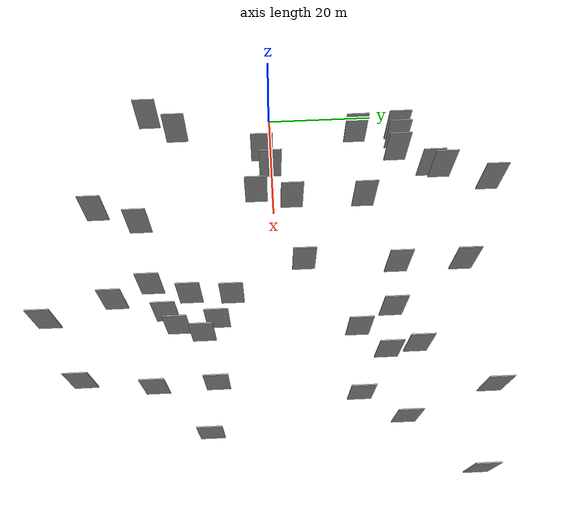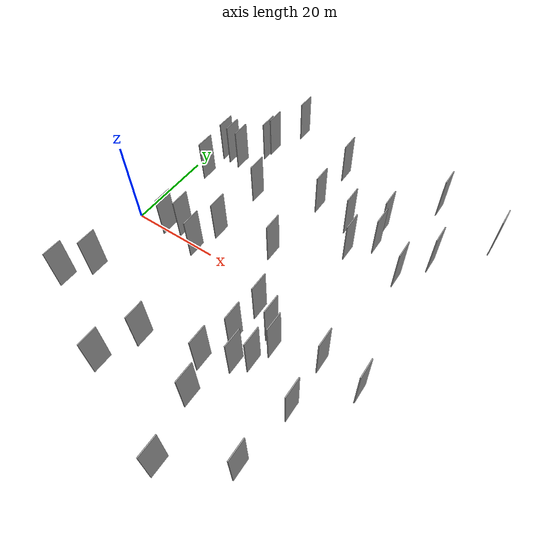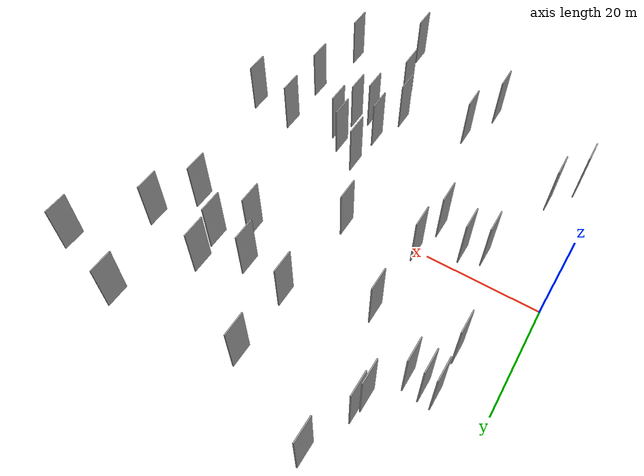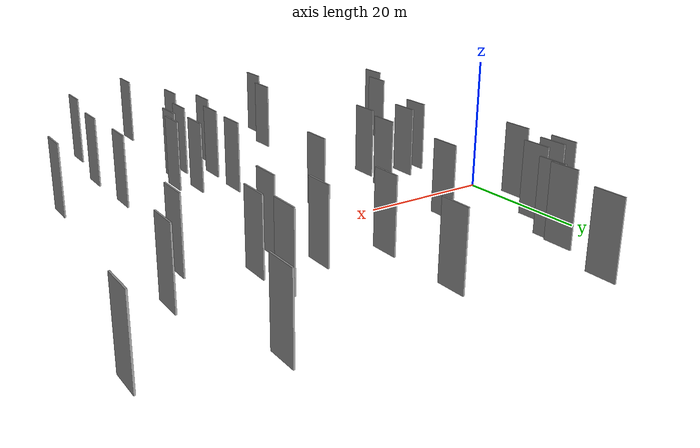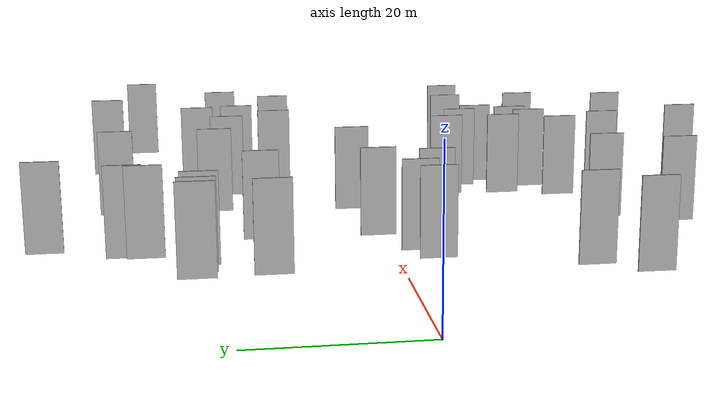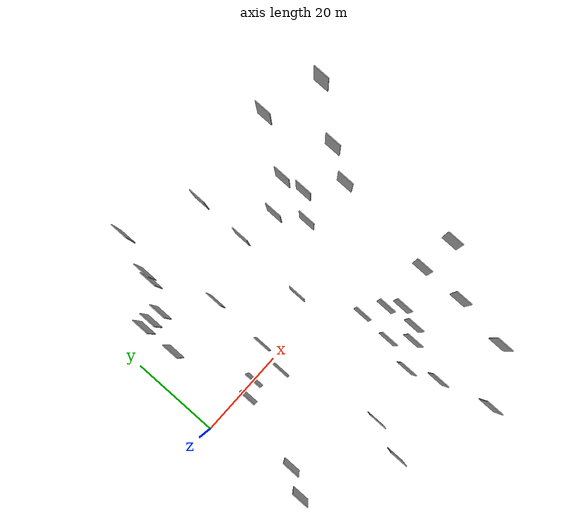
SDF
<sdf version="1.6">
 <world name="default">
  <scene>
   <sky><clouds><speed>12</speed></clouds></sky>
   <ambient>0.4 0.4 0.4 1</ambient>
   <background>0.7 0.7 0.7 1</background>
   <shadows>1</shadows>
  </scene>
  <gravity>0 0 -9.8066</gravity>
  <magnetic_field>6e-06 2.3e-05 -4.2e-05</magnetic_field>
  <physics default="0" name="default_physics" type="ode">
   <ode>
    <solver>
     <type>quick</type>
     <iters>10</iters>
     <sor>1.0</sor>
     <use_dynamic_moi_rescaling>0</use_dynamic_moi_rescaling>
    </solver>
    <constraints>
     <cfm>0</cfm>
     <erp>0.2</erp>
     <contact_max_correcting_vel>100</contact_max_correcting_vel>
     <contact_surface_layer>0.001</contact_surface_layer>
    </constraints>
   </ode>
   <max_step_size>0.004</max_step_size>
   <real_time_factor>1</real_time_factor>
   <real_time_update_rate>250</real_time_update_rate>
  </physics>
  <light name="sun" type="directional">
   <pose>0 0 10 0 0 0</pose>
   <diffuse>0.8 0.8 0.8 1</diffuse>
   <specular>0.2 0.2 0.2 1</specular>
   <attenuation>
    <range>1000</range>
    <constant>0.9</constant>
    <linear>0.01</linear>
    <quadratic>0.001</quadratic>
   </attenuation>
   <direction>-0.5 0.1 -0.9</direction>
  </light>
  <model name="grey_wall_1">
   <static>1</static>
   <pose>24.9334 -24.1360 5.0 0.000000 0.000000 1.570796</pose>
   <link name="link">
    <pose>0 0 5.00 0 0 0</pose>
    <collision name="collision"><geometry><box><size>4.00 0.2 10.00</size></box></geometry></collision>
    <visual name="visual">
     <cast_shadows>0</cast_shadows>
     <geometry><box><size>4.00 0.2 10.00</size></box></geometry>
     <material>
      <script>
       <uri>model://grey_wall/materials/scripts</uri>
       <uri>model://grey_wall/materials/textures</uri>
       <name>vrc/grey_wall</name>
      </script>
     </material>
    </visual>
   </link>
  </model>
  <model name="grey_wall_2">
   <static>1</static>
   <pose>21.0418 3.3107 5.0 0.000000 0.000000 1.570796</pose>
   <link name="link">
    <pose>0 0 5.00 0 0 0</pose>
    <collision name="collision"><geometry><box><size>4.00 0.2 10.00</size></box></geometry></collision>
    <visual name="visual">
     <cast_shadows>0</cast_shadows>
     <geometry><box><size>4.00 0.2 10.00</size></box></geometry>
     <material>
      <script>
       <uri>model://grey_wall/materials/scripts</uri>
       <uri>model://grey_wall/materials/textures</uri>
       <name>vrc/grey_wall</name>
      </script>
     </material>
    </visual>
   </link>
  </model>
  <model name="grey_wall_3">
   <static>1</static>
   <pose>7.9303 15.7791 5.0 0.000000 0.000000 1.570796</pose>
   <link name="link">
    <pose>0 0 5.00 0 0 0</pose>
    <collision name="collision"><geometry><box><size>4.00 0.2 10.00</size></box></geometry></collision>
    <visual name="visual">
     <cast_shadows>0</cast_shadows>
     <geometry><box><size>4.00 0.2 10.00</size></box></geometry>
     <material>
      <script>
       <uri>model://grey_wall/materials/scripts</uri>
       <uri>model://grey_wall/materials/textures</uri>
       <name>vrc/grey_wall</name>
      </script>
     </material>
    </visual>
   </link>
  </model>
  <model name="grey_wall_4">
   <static>1</static>
   <pose>45.8135 13.3324 5.0 0.000000 0.000000 1.570796</pose>
   <link name="link">
    <pose>0 0 5.00 0 0 0</pose>
    <collision name="collision"><geometry><box><size>4.00 0.2 10.00</size></box></geometry></collision>
    <visual name="visual">
     <cast_shadows>0</cast_shadows>
     <geometry><box><size>4.00 0.2 10.00</size></box></geometry>
     <material>
      <script>
       <uri>model://grey_wall/materials/scripts</uri>
       <uri>model://grey_wall/materials/textures</uri>
       <name>vrc/grey_wall</name>
      </script>
     </material>
    </visual>
   </link>
  </model>
  <model name="grey_wall_5">
   <static>1</static>
   <pose>43.4288 -10.3861 5.0 0.000000 0.000000 1.570796</pose>
   <link name="link">
    <pose>0 0 5.00 0 0 0</pose>
    <collision name="collision"><geometry><box><size>4.00 0.2 10.00</size></box></geometry></collision>
    <visual name="visual">
     <cast_shadows>0</cast_shadows>
     <geometry><box><size>4.00 0.2 10.00</size></box></geometry>
     <material>
      <script>
       <uri>model://grey_wall/materials/scripts</uri>
       <uri>model://grey_wall/materials/textures</uri>
       <name>vrc/grey_wall</name>
      </script>
     </material>
    </visual>
   </link>
  </model>
  <model name="grey_wall_6">
   <static>1</static>
   <pose>38.7096 -15.0598 5.0 0.000000 0.000000 1.570796</pose>
   <link name="link">
    <pose>0 0 5.00 0 0 0</pose>
    <collision name="collision"><geometry><box><size>4.00 0.2 10.00</size></box></geometry></collision>
    <visual name="visual">
     <cast_shadows>0</cast_shadows>
     <geometry><box><size>4.00 0.2 10.00</size></box></geometry>
     <material>
      <script>
       <uri>model://grey_wall/materials/scripts</uri>
       <uri>model://grey_wall/materials/textures</uri>
       <name>vrc/grey_wall</name>
      </script>
     </material>
    </visual>
   </link>
  </model>
  <model name="grey_wall_7">
   <static>1</static>
   <pose>15.6168 28.7492 5.0 0.000000 0.000000 1.570796</pose>
   <link name="link">
    <pose>0 0 5.00 0 0 0</pose>
    <collision name="collision"><geometry><box><size>4.00 0.2 10.00</size></box></geometry></collision>
    <visual name="visual">
     <cast_shadows>0</cast_shadows>
     <geometry><box><size>4.00 0.2 10.00</size></box></geometry>
     <material>
      <script>
       <uri>model://grey_wall/materials/scripts</uri>
       <uri>model://grey_wall/materials/textures</uri>
       <name>vrc/grey_wall</name>
      </script>
     </material>
    </visual>
   </link>
  </model>
  <model name="grey_wall_8">
   <static>1</static>
   <pose>33.2793 4.7971 5.0 0.000000 0.000000 1.570796</pose>
   <link name="link">
    <pose>0 0 5.00 0 0 0</pose>
    <collision name="collision"><geometry><box><size>4.00 0.2 10.00</size></box></geometry></collision>
    <visual name="visual">
     <cast_shadows>0</cast_shadows>
     <geometry><box><size>4.00 0.2 10.00</size></box></geometry>
     <material>
      <script>
       <uri>model://grey_wall/materials/scripts</uri>
       <uri>model://grey_wall/materials/textures</uri>
       <name>vrc/grey_wall</name>
      </script>
     </material>
    </visual>
   </link>
  </model>
  <model name="grey_wall_9">
   <static>1</static>
   <pose>49.1482 22.9921 5.0 0.000000 0.000000 1.570796</pose>
   <link name="link">
    <pose>0 0 5.00 0 0 0</pose>
    <collision name="collision"><geometry><box><size>4.00 0.2 10.00</size></box></geometry></collision>
    <visual name="visual">
     <cast_shadows>0</cast_shadows>
     <geometry><box><size>4.00 0.2 10.00</size></box></geometry>
     <material>
      <script>
       <uri>model://grey_wall/materials/scripts</uri>
       <uri>model://grey_wall/materials/textures</uri>
       <name>vrc/grey_wall</name>
      </script>
     </material>
    </visual>
   </link>
  </model>
  <model name="grey_wall_10">
   <static>1</static>
   <pose>56.5663 34.7263 5.0 0.000000 0.000000 1.570796</pose>
   <link name="link">
    <pose>0 0 5.00 0 0 0</pose>
    <collision name="collision"><geometry><box><size>4.00 0.2 10.00</size></box></geometry></collision>
    <visual name="visual">
     <cast_shadows>0</cast_shadows>
     <geometry><box><size>4.00 0.2 10.00</size></box></geometry>
     <material>
      <script>
       <uri>model://grey_wall/materials/scripts</uri>
       <uri>model://grey_wall/materials/textures</uri>
       <name>vrc/grey_wall</name>
      </script>
     </material>
    </visual>
   </link>
  </model>
  <model name="grey_wall_11">
   <static>1</static>
   <pose>49.9508 17.9340 5.0 0.000000 0.000000 1.570796</pose>
   <link name="link">
    <pose>0 0 5.00 0 0 0</pose>
    <collision name="collision"><geometry><box><size>4.00 0.2 10.00</size></box></geometry></collision>
    <visual name="visual">
     <cast_shadows>0</cast_shadows>
     <geometry><box><size>4.00 0.2 10.00</size></box></geometry>
     <material>
      <script>
       <uri>model://grey_wall/materials/scripts</uri>
       <uri>model://grey_wall/materials/textures</uri>
       <name>vrc/grey_wall</name>
      </script>
     </material>
    </visual>
   </link>
  </model>
  <model name="grey_wall_12">
   <static>1</static>
   <pose>16.0333 30.9045 5.0 0.000000 0.000000 1.570796</pose>
   <link name="link">
    <pose>0 0 5.00 0 0 0</pose>
    <collision name="collision"><geometry><box><size>4.00 0.2 10.00</size></box></geometry></collision>
    <visual name="visual">
     <cast_shadows>0</cast_shadows>
     <geometry><box><size>4.00 0.2 10.00</size></box></geometry>
     <material>
      <script>
       <uri>model://grey_wall/materials/scripts</uri>
       <uri>model://grey_wall/materials/textures</uri>
       <name>vrc/grey_wall</name>
      </script>
     </material>
    </visual>
   </link>
  </model>
  <model name="grey_wall_13">
   <static>1</static>
   <pose>34.4490 32.5929 5.0 0.000000 0.000000 1.570796</pose>
   <link name="link">
    <pose>0 0 5.00 0 0 0</pose>
    <collision name="collision"><geometry><box><size>4.00 0.2 10.00</size></box></geometry></collision>
    <visual name="visual">
     <cast_shadows>0</cast_shadows>
     <geometry><box><size>4.00 0.2 10.00</size></box></geometry>
     <material>
      <script>
       <uri>model://grey_wall/materials/scripts</uri>
       <uri>model://grey_wall/materials/textures</uri>
       <name>vrc/grey_wall</name>
      </script>
     </material>
    </visual>
   </link>
  </model>
  <model name="grey_wall_14">
   <static>1</static>
   <pose>39.2677 -28.0688 5.0 0.000000 0.000000 1.570796</pose>
   <link name="link">
    <pose>0 0 5.00 0 0 0</pose>
    <collision name="collision"><geometry><box><size>4.00 0.2 10.00</size></box></geometry></collision>
    <visual name="visual">
     <cast_shadows>0</cast_shadows>
     <geometry><box><size>4.00 0.2 10.00</size></box></geometry>
     <material>
      <script>
       <uri>model://grey_wall/materials/scripts</uri>
       <uri>model://grey_wall/materials/textures</uri>
       <name>vrc/grey_wall</name>
      </script>
     </material>
    </visual>
   </link>
  </model>
  <model name="grey_wall_15">
   <static>1</static>
   <pose>61.1426 19.7919 5.0 0.000000 0.000000 1.570796</pose>
   <link name="link">
    <pose>0 0 5.00 0 0 0</pose>
    <collision name="collision"><geometry><box><size>4.00 0.2 10.00</size></box></geometry></collision>
    <visual name="visual">
     <cast_shadows>0</cast_shadows>
     <geometry><box><size>4.00 0.2 10.00</size></box></geometry>
     <material>
      <script>
       <uri>model://grey_wall/materials/scripts</uri>
       <uri>model://grey_wall/materials/textures</uri>
       <name>vrc/grey_wall</name>
      </script>
     </material>
    </visual>
   </link>
  </model>
  <model name="grey_wall_16">
   <static>1</static>
   <pose>54.6031 -20.7735 5.0 0.000000 0.000000 1.570796</pose>
   <link name="link">
    <pose>0 0 5.00 0 0 0</pose>
    <collision name="collision"><geometry><box><size>4.00 0.2 10.00</size></box></geometry></collision>
    <visual name="visual">
     <cast_shadows>0</cast_shadows>
     <geometry><box><size>4.00 0.2 10.00</size></box></geometry>
     <material>
      <script>
       <uri>model://grey_wall/materials/scripts</uri>
       <uri>model://grey_wall/materials/textures</uri>
       <name>vrc/grey_wall</name>
      </script>
     </material>
    </visual>
   </link>
  </model>
  <model name="grey_wall_17">
   <static>1</static>
   <pose>12.1408 23.0404 5.0 0.000000 0.000000 1.570796</pose>
   <link name="link">
    <pose>0 0 5.00 0 0 0</pose>
    <collision name="collision"><geometry><box><size>4.00 0.2 10.00</size></box></geometry></collision>
    <visual name="visual">
     <cast_shadows>0</cast_shadows>
     <geometry><box><size>4.00 0.2 10.00</size></box></geometry>
     <material>
      <script>
       <uri>model://grey_wall/materials/scripts</uri>
       <uri>model://grey_wall/materials/textures</uri>
       <name>vrc/grey_wall</name>
      </script>
     </material>
    </visual>
   </link>
  </model>
  <model name="grey_wall_18">
   <static>1</static>
   <pose>62.4654 -11.7298 5.0 0.000000 0.000000 1.570796</pose>
   <link name="link">
    <pose>0 0 5.00 0 0 0</pose>
    <collision name="collision"><geometry><box><size>4.00 0.2 10.00</size></box></geometry></collision>
    <visual name="visual">
     <cast_shadows>0</cast_shadows>
     <geometry><box><size>4.00 0.2 10.00</size></box></geometry>
     <material>
      <script>
       <uri>model://grey_wall/materials/scripts</uri>
       <uri>model://grey_wall/materials/textures</uri>
       <name>vrc/grey_wall</name>
      </script>
     </material>
    </visual>
   </link>
  </model>
  <model name="grey_wall_19">
   <static>1</static>
   <pose>39.0457 -7.8593 5.0 0.000000 0.000000 1.570796</pose>
   <link name="link">
    <pose>0 0 5.00 0 0 0</pose>
    <collision name="collision"><geometry><box><size>4.00 0.2 10.00</size></box></geometry></collision>
    <visual name="visual">
     <cast_shadows>0</cast_shadows>
     <geometry><box><size>4.00 0.2 10.00</size></box></geometry>
     <material>
      <script>
       <uri>model://grey_wall/materials/scripts</uri>
       <uri>model://grey_wall/materials/textures</uri>
       <name>vrc/grey_wall</name>
      </script>
     </material>
    </visual>
   </link>
  </model>
  <model name="grey_wall_20">
   <static>1</static>
   <pose>9.5559 23.3455 5.0 0.000000 0.000000 1.570796</pose>
   <link name="link">
    <pose>0 0 5.00 0 0 0</pose>
    <collision name="collision"><geometry><box><size>4.00 0.2 10.00</size></box></geometry></collision>
    <visual name="visual">
     <cast_shadows>0</cast_shadows>
     <geometry><box><size>4.00 0.2 10.00</size></box></geometry>
     <material>
      <script>
       <uri>model://grey_wall/materials/scripts</uri>
       <uri>model://grey_wall/materials/textures</uri>
       <name>vrc/grey_wall</name>
      </script>
     </material>
    </visual>
   </link>
  </model>
  <model name="grey_wall_21">
   <static>1</static>
   <pose>19.6417 -3.0425 5.0 0.000000 0.000000 1.570796</pose>
   <link name="link">
    <pose>0 0 5.00 0 0 0</pose>
    <collision name="collision"><geometry><box><size>4.00 0.2 10.00</size></box></geometry></collision>
    <visual name="visual">
     <cast_shadows>0</cast_shadows>
     <geometry><box><size>4.00 0.2 10.00</size></box></geometry>
     <material>
      <script>
       <uri>model://grey_wall/materials/scripts</uri>
       <uri>model://grey_wall/materials/textures</uri>
       <name>vrc/grey_wall</name>
      </script>
     </material>
    </visual>
   </link>
  </model>
  <model name="grey_wall_22">
   <static>1</static>
   <pose>22.1229 -31.9773 5.0 0.000000 0.000000 1.570796</pose>
   <link name="link">
    <pose>0 0 5.00 0 0 0</pose>
    <collision name="collision"><geometry><box><size>4.00 0.2 10.00</size></box></geometry></collision>
    <visual name="visual">
     <cast_shadows>0</cast_shadows>
     <geometry><box><size>4.00 0.2 10.00</size></box></geometry>
     <material>
      <script>
       <uri>model://grey_wall/materials/scripts</uri>
       <uri>model://grey_wall/materials/textures</uri>
       <name>vrc/grey_wall</name>
      </script>
     </material>
    </visual>
   </link>
  </model>
  <model name="grey_wall_23">
   <static>1</static>
   <pose>42.2569 -39.5623 5.0 0.000000 0.000000 1.570796</pose>
   <link name="link">
    <pose>0 0 5.00 0 0 0</pose>
    <collision name="collision"><geometry><box><size>4.00 0.2 10.00</size></box></geometry></collision>
    <visual name="visual">
     <cast_shadows>0</cast_shadows>
     <geometry><box><size>4.00 0.2 10.00</size></box></geometry>
     <material>
      <script>
       <uri>model://grey_wall/materials/scripts</uri>
       <uri>model://grey_wall/materials/textures</uri>
       <name>vrc/grey_wall</name>
      </script>
     </material>
    </visual>
   </link>
  </model>
  <model name="grey_wall_24">
   <static>1</static>
   <pose>18.9084 39.4700 5.0 0.000000 0.000000 1.570796</pose>
   <link name="link">
    <pose>0 0 5.00 0 0 0</pose>
    <collision name="collision"><geometry><box><size>4.00 0.2 10.00</size></box></geometry></collision>
    <visual name="visual">
     <cast_shadows>0</cast_shadows>
     <geometry><box><size>4.00 0.2 10.00</size></box></geometry>
     <material>
      <script>
       <uri>model://grey_wall/materials/scripts</uri>
       <uri>model://grey_wall/materials/textures</uri>
       <name>vrc/grey_wall</name>
      </script>
     </material>
    </visual>
   </link>
  </model>
  <model name="grey_wall_25">
   <static>1</static>
   <pose>53.0624 -32.8747 5.0 0.000000 0.000000 1.570796</pose>
   <link name="link">
    <pose>0 0 5.00 0 0 0</pose>
    <collision name="collision"><geometry><box><size>4.00 0.2 10.00</size></box></geometry></collision>
    <visual name="visual">
     <cast_shadows>0</cast_shadows>
     <geometry><box><size>4.00 0.2 10.00</size></box></geometry>
     <material>
      <script>
       <uri>model://grey_wall/materials/scripts</uri>
       <uri>model://grey_wall/materials/textures</uri>
       <name>vrc/grey_wall</name>
      </script>
     </material>
    </visual>
   </link>
  </model>
  <model name="grey_wall_26">
   <static>1</static>
   <pose>7.6279 23.4712 5.0 0.000000 0.000000 1.570796</pose>
   <link name="link">
    <pose>0 0 5.00 0 0 0</pose>
    <collision name="collision"><geometry><box><size>4.00 0.2 10.00</size></box></geometry></collision>
    <visual name="visual">
     <cast_shadows>0</cast_shadows>
     <geometry><box><size>4.00 0.2 10.00</size></box></geometry>
     <material>
      <script>
       <uri>model://grey_wall/materials/scripts</uri>
       <uri>model://grey_wall/materials/textures</uri>
       <name>vrc/grey_wall</name>
      </script>
     </material>
    </visual>
   </link>
  </model>
  <model name="grey_wall_27">
   <static>1</static>
   <pose>3.3001 -22.7994 5.0 0.000000 0.000000 1.570796</pose>
   <link name="link">
    <pose>0 0 5.00 0 0 0</pose>
    <collision name="collision"><geometry><box><size>4.00 0.2 10.00</size></box></geometry></collision>
    <visual name="visual">
     <cast_shadows>0</cast_shadows>
     <geometry><box><size>4.00 0.2 10.00</size></box></geometry>
     <material>
      <script>
       <uri>model://grey_wall/materials/scripts</uri>
       <uri>model://grey_wall/materials/textures</uri>
       <name>vrc/grey_wall</name>
      </script>
     </material>
    </visual>
   </link>
  </model>
  <model name="grey_wall_28">
   <static>1</static>
   <pose>21.3265 16.2888 5.0 0.000000 0.000000 1.570796</pose>
   <link name="link">
    <pose>0 0 5.00 0 0 0</pose>
    <collision name="collision"><geometry><box><size>4.00 0.2 10.00</size></box></geometry></collision>
    <visual name="visual">
     <cast_shadows>0</cast_shadows>
     <geometry><box><size>4.00 0.2 10.00</size></box></geometry>
     <material>
      <script>
       <uri>model://grey_wall/materials/scripts</uri>
       <uri>model://grey_wall/materials/textures</uri>
       <name>vrc/grey_wall</name>
      </script>
     </material>
    </visual>
   </link>
  </model>
  <model name="grey_wall_29">
   <static>1</static>
   <pose>57.0084 12.7701 5.0 0.000000 0.000000 1.570796</pose>
   <link name="link">
    <pose>0 0 5.00 0 0 0</pose>
    <collision name="collision"><geometry><box><size>4.00 0.2 10.00</size></box></geometry></collision>
    <visual name="visual">
     <cast_shadows>0</cast_shadows>
     <geometry><box><size>4.00 0.2 10.00</size></box></geometry>
     <material>
      <script>
       <uri>model://grey_wall/materials/scripts</uri>
       <uri>model://grey_wall/materials/textures</uri>
       <name>vrc/grey_wall</name>
      </script>
     </material>
    </visual>
   </link>
  </model>
  <model name="grey_wall_30">
   <static>1</static>
   <pose>34.4512 21.0657 5.0 0.000000 0.000000 1.570796</pose>
   <link name="link">
    <pose>0 0 5.00 0 0 0</pose>
    <collision name="collision"><geometry><box><size>4.00 0.2 10.00</size></box></geometry></collision>
    <visual name="visual">
     <cast_shadows>0</cast_shadows>
     <geometry><box><size>4.00 0.2 10.00</size></box></geometry>
     <material>
      <script>
       <uri>model://grey_wall/materials/scripts</uri>
       <uri>model://grey_wall/materials/textures</uri>
       <name>vrc/grey_wall</name>
      </script>
     </material>
    </visual>
   </link>
  </model>
  <model name="grey_wall_31">
   <static>1</static>
   <pose>42.5054 19.4000 5.0 0.000000 0.000000 1.570796</pose>
   <link name="link">
    <pose>0 0 5.00 0 0 0</pose>
    <collision name="collision"><geometry><box><size>4.00 0.2 10.00</size></box></geometry></collision>
    <visual name="visual">
     <cast_shadows>0</cast_shadows>
     <geometry><box><size>4.00 0.2 10.00</size></box></geometry>
     <material>
      <script>
       <uri>model://grey_wall/materials/scripts</uri>
       <uri>model://grey_wall/materials/textures</uri>
       <name>vrc/grey_wall</name>
      </script>
     </material>
    </visual>
   </link>
  </model>
  <model name="grey_wall_32">
   <static>1</static>
   <pose>44.2521 -17.1879 5.0 0.000000 0.000000 1.570796</pose>
   <link name="link">
    <pose>0 0 5.00 0 0 0</pose>
    <collision name="collision"><geometry><box><size>4.00 0.2 10.00</size></box></geometry></collision>
    <visual name="visual">
     <cast_shadows>0</cast_shadows>
     <geometry><box><size>4.00 0.2 10.00</size></box></geometry>
     <material>
      <script>
       <uri>model://grey_wall/materials/scripts</uri>
       <uri>model://grey_wall/materials/textures</uri>
       <name>vrc/grey_wall</name>
      </script>
     </material>
    </visual>
   </link>
  </model>
  <model name="grey_wall_33">
   <static>1</static>
   <pose>11.2180 -1.6952 5.0 0.000000 0.000000 1.570796</pose>
   <link name="link">
    <pose>0 0 5.00 0 0 0</pose>
    <collision name="collision"><geometry><box><size>4.00 0.2 10.00</size></box></geometry></collision>
    <visual name="visual">
     <cast_shadows>0</cast_shadows>
     <geometry><box><size>4.00 0.2 10.00</size></box></geometry>
     <material>
      <script>
       <uri>model://grey_wall/materials/scripts</uri>
       <uri>model://grey_wall/materials/textures</uri>
       <name>vrc/grey_wall</name>
      </script>
     </material>
    </visual>
   </link>
  </model>
  <model name="grey_wall_34">
   <static>1</static>
   <pose>36.7266 -21.8203 5.0 0.000000 0.000000 1.570796</pose>
   <link name="link">
    <pose>0 0 5.00 0 0 0</pose>
    <collision name="collision"><geometry><box><size>4.00 0.2 10.00</size></box></geometry></collision>
    <visual name="visual">
     <cast_shadows>0</cast_shadows>
     <geometry><box><size>4.00 0.2 10.00</size></box></geometry>
     <material>
      <script>
       <uri>model://grey_wall/materials/scripts</uri>
       <uri>model://grey_wall/materials/textures</uri>
       <name>vrc/grey_wall</name>
      </script>
     </material>
    </visual>
   </link>
  </model>
  <model name="grey_wall_35">
   <static>1</static>
   <pose>41.8432 -19.1204 5.0 0.000000 0.000000 1.570796</pose>
   <link name="link">
    <pose>0 0 5.00 0 0 0</pose>
    <collision name="collision"><geometry><box><size>4.00 0.2 10.00</size></box></geometry></collision>
    <visual name="visual">
     <cast_shadows>0</cast_shadows>
     <geometry><box><size>4.00 0.2 10.00</size></box></geometry>
     <material>
      <script>
       <uri>model://grey_wall/materials/scripts</uri>
       <uri>model://grey_wall/materials/textures</uri>
       <name>vrc/grey_wall</name>
      </script>
     </material>
    </visual>
   </link>
  </model>
  <model name="grey_wall_36">
   <static>1</static>
   <pose>6.5026 -17.5276 5.0 0.000000 0.000000 1.570796</pose>
   <link name="link">
    <pose>0 0 5.00 0 0 0</pose>
    <collision name="collision"><geometry><box><size>4.00 0.2 10.00</size></box></geometry></collision>
    <visual name="visual">
     <cast_shadows>0</cast_shadows>
     <geometry><box><size>4.00 0.2 10.00</size></box></geometry>
     <material>
      <script>
       <uri>model://grey_wall/materials/scripts</uri>
       <uri>model://grey_wall/materials/textures</uri>
       <name>vrc/grey_wall</name>
      </script>
     </material>
    </visual>
   </link>
  </model>
  <model name="grey_wall_37">
   <static>1</static>
   <pose>54.3203 -10.6576 5.0 0.000000 0.000000 1.570796</pose>
   <link name="link">
    <pose>0 0 5.00 0 0 0</pose>
    <collision name="collision"><geometry><box><size>4.00 0.2 10.00</size></box></geometry></collision>
    <visual name="visual">
     <cast_shadows>0</cast_shadows>
     <geometry><box><size>4.00 0.2 10.00</size></box></geometry>
     <material>
      <script>
       <uri>model://grey_wall/materials/scripts</uri>
       <uri>model://grey_wall/materials/textures</uri>
       <name>vrc/grey_wall</name>
      </script>
     </material>
    </visual>
   </link>
  </model>
  <model name="grey_wall_38">
   <static>1</static>
   <pose>14.5233 -0.2872 5.0 0.000000 0.000000 1.570796</pose>
   <link name="link">
    <pose>0 0 5.00 0 0 0</pose>
    <collision name="collision"><geometry><box><size>4.00 0.2 10.00</size></box></geometry></collision>
    <visual name="visual">
     <cast_shadows>0</cast_shadows>
     <geometry><box><size>4.00 0.2 10.00</size></box></geometry>
     <material>
      <script>
       <uri>model://grey_wall/materials/scripts</uri>
       <uri>model://grey_wall/materials/textures</uri>
       <name>vrc/grey_wall</name>
      </script>
     </material>
    </visual>
   </link>
  </model>
  <model name="grey_wall_39">
   <static>1</static>
   <pose>45.7271 -12.9109 5.0 0.000000 0.000000 1.570796</pose>
   <link name="link">
    <pose>0 0 5.00 0 0 0</pose>
    <collision name="collision"><geometry><box><size>4.00 0.2 10.00</size></box></geometry></collision>
    <visual name="visual">
     <cast_shadows>0</cast_shadows>
     <geometry><box><size>4.00 0.2 10.00</size></box></geometry>
     <material>
      <script>
       <uri>model://grey_wall/materials/scripts</uri>
       <uri>model://grey_wall/materials/textures</uri>
       <name>vrc/grey_wall</name>
      </script>
     </material>
    </visual>
   </link>
  </model>
  <model name="grey_wall_40">
   <static>1</static>
   <pose>69.8273 30.6831 5.0 0.000000 0.000000 1.570796</pose>
   <link name="link">
    <pose>0 0 5.00 0 0 0</pose>
    <collision name="collision"><geometry><box><size>4.00 0.2 10.00</size></box></geometry></collision>
    <visual name="visual">
     <cast_shadows>0</cast_shadows>
     <geometry><box><size>4.00 0.2 10.00</size></box></geometry>
     <material>
      <script>
       <uri>model://grey_wall/materials/scripts</uri>
       <uri>model://grey_wall/materials/textures</uri>
       <name>vrc/grey_wall</name>
      </script>
     </material>
    </visual>
   </link>
  </model>
 </world>
</sdf>
